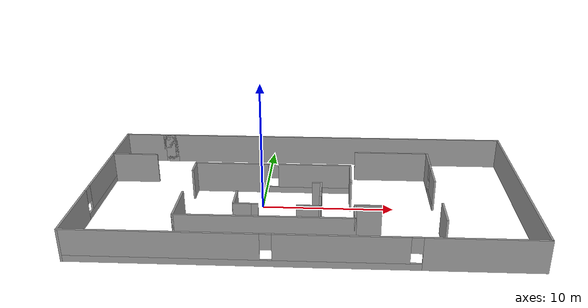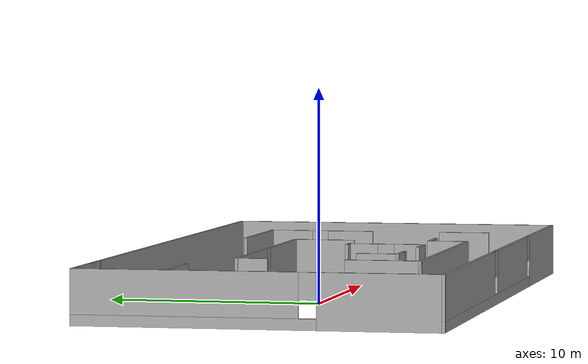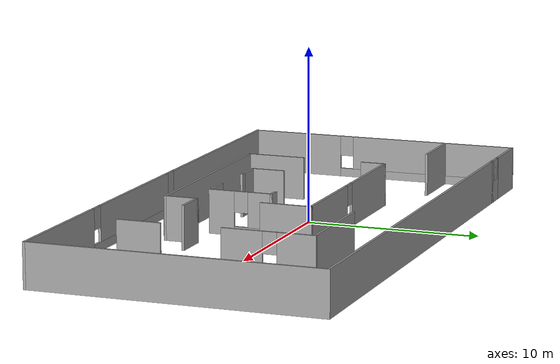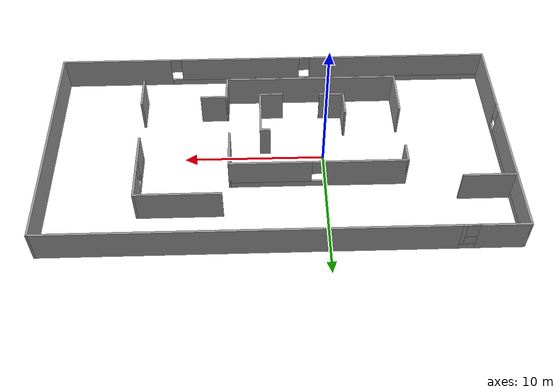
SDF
<?xml version='1.0'?>
<sdf version='1.6'>
  <model name='my_robot_building'>
    <pose frame=''>3.34581 0.063017 0 0 -0 0</pose>
    <link name='Wall_0'>
      <collision name='Wall_0_Collision'>
        <geometry>
          <box>
            <size>2 0.15 2.5</size>
          </box>
        </geometry>
        <pose frame=''>0 0 1.25 0 -0 0</pose>
      </collision>
      <visual name='Wall_0_Visual'>
        <pose frame=''>0 0 1.25 0 -0 0</pose>
        <geometry>
          <box>
            <size>2 0.15 2.5</size>
          </box>
        </geometry>
        <material>
          <script>
            <uri>file://media/materials/scripts/gazebo.material</uri>
            <name>Gazebo/Grey</name>
          </script>
          <ambient>1 1 1 1</ambient>
        </material>
        <meta>
          <layer>0</layer>
        </meta>
      </visual>
      <pose frame=''>-5.01581 -3.17802 0 0 0 -1.5708</pose>
    </link>
    <link name='Wall_1'>
      <collision name='Wall_1_Collision'>
        <geometry>
          <box>
            <size>1.5 0.15 2.5</size>
          </box>
        </geometry>
        <pose frame=''>0 0 1.25 0 -0 0</pose>
      </collision>
      <visual name='Wall_1_Visual'>
        <pose frame=''>0 0 1.25 0 -0 0</pose>
        <geometry>
          <box>
            <size>1.5 0.15 2.5</size>
          </box>
        </geometry>
        <material>
          <script>
            <uri>file://media/materials/scripts/gazebo.material</uri>
            <name>Gazebo/Grey</name>
          </script>
          <ambient>1 1 1 1</ambient>
        </material>
        <meta>
          <layer>0</layer>
        </meta>
      </visual>
      <pose frame=''>-4.34081 -4.10302 0 0 -0 0</pose>
    </link>
    <link name='Wall_10'>
      <collision name='Wall_10_Collision'>
        <geometry>
          <box>
            <size>3 0.15 2.5</size>
          </box>
        </geometry>
        <pose frame=''>0 0 1.25 0 -0 0</pose>
      </collision>
      <visual name='Wall_10_Visual'>
        <pose frame=''>0 0 1.25 0 -0 0</pose>
        <geometry>
          <box>
            <size>3 0.15 2.5</size>
          </box>
        </geometry>
        <material>
          <script>
            <uri>file://media/materials/scripts/gazebo.material</uri>
            <name>Gazebo/Grey</name>
          </script>
          <ambient>1 1 1 1</ambient>
        </material>
        <meta>
          <layer>0</layer>
        </meta>
      </visual>
      <pose frame=''>3.38181 1.10504 0 0 0 -1.5708</pose>
    </link>
    <link name='Wall_12'>
      <collision name='Wall_12_Collision'>
        <geometry>
          <box>
            <size>1.5 0.15 2.5</size>
          </box>
        </geometry>
        <pose frame=''>0 0 1.25 0 -0 0</pose>
      </collision>
      <visual name='Wall_12_Visual'>
        <pose frame=''>0 0 1.25 0 -0 0</pose>
        <geometry>
          <box>
            <size>1.5 0.15 2.5</size>
          </box>
        </geometry>
        <material>
          <script>
            <uri>file://media/materials/scripts/gazebo.material</uri>
            <name>Gazebo/Grey</name>
          </script>
          <ambient>1 1 1 1</ambient>
        </material>
        <meta>
          <layer>0</layer>
        </meta>
      </visual>
      <pose frame=''>-8.96819 1.85504 0 0 0 -1.5708</pose>
    </link>
    <link name='Wall_16'>
      <collision name='Wall_16_Collision'>
        <geometry>
          <box>
            <size>3.5 0.15 2.5</size>
          </box>
        </geometry>
        <pose frame=''>0 0 1.25 0 -0 0</pose>
      </collision>
      <visual name='Wall_16_Visual'>
        <pose frame=''>0 0 1.25 0 -0 0</pose>
        <geometry>
          <box>
            <size>3.5 0.15 2.5</size>
          </box>
        </geometry>
        <material>
          <script>
            <uri>file://media/materials/scripts/gazebo.material</uri>
            <name>Gazebo/Grey</name>
          </script>
          <ambient>1 1 1 1</ambient>
        </material>
        <meta>
          <layer>0</layer>
        </meta>
      </visual>
      <pose frame=''>-8.99132 -4.18743 0 0 0 -1.5708</pose>
    </link>
    <link name='Wall_17'>
      <collision name='Wall_17_Collision'>
        <geometry>
          <box>
            <size>12.75 0.15 2.5</size>
          </box>
        </geometry>
        <pose frame=''>0 0 1.25 0 -0 0</pose>
      </collision>
      <visual name='Wall_17_Visual'>
        <pose frame=''>0 0 1.25 0 -0 0</pose>
        <geometry>
          <box>
            <size>12.75 0.15 2.5</size>
          </box>
        </geometry>
        <material>
          <script>
            <uri>file://media/materials/scripts/gazebo.material</uri>
            <name>Gazebo/Grey</name>
          </script>
          <ambient>1 1 1 1</ambient>
        </material>
        <meta>
          <layer>0</layer>
        </meta>
      </visual>
      <pose frame=''>-2.69132 -5.86243 0 0 -0 0</pose>
    </link>
    <link name='Wall_18'>
      <collision name='Wall_18_Collision'>
        <geometry>
          <box>
            <size>2 0.15 2.5</size>
          </box>
        </geometry>
        <pose frame=''>0 0 1.25 0 -0 0</pose>
      </collision>
      <visual name='Wall_18_Visual'>
        <pose frame=''>0 0 1.25 0 -0 0</pose>
        <geometry>
          <box>
            <size>2 0.15 2.5</size>
          </box>
        </geometry>
        <material>
          <script>
            <uri>file://media/materials/scripts/gazebo.material</uri>
            <name>Gazebo/Grey</name>
          </script>
          <ambient>1 1 1 1</ambient>
        </material>
        <meta>
          <layer>0</layer>
        </meta>
      </visual>
      <pose frame=''>3.60868 -4.93743 0 0 -0 1.5708</pose>
    </link>
    <link name='Wall_19'>
      <collision name='Wall_19_Collision'>
        <geometry>
          <box>
            <size>2 0.15 2.5</size>
          </box>
        </geometry>
        <pose frame=''>0 0 1.25 0 -0 0</pose>
      </collision>
      <visual name='Wall_19_Visual'>
        <pose frame=''>0 0 1.25 0 -0 0</pose>
        <geometry>
          <box>
            <size>2 0.15 2.5</size>
          </box>
        </geometry>
        <material>
          <script>
            <uri>file://media/materials/scripts/gazebo.material</uri>
            <name>Gazebo/Grey</name>
          </script>
          <ambient>1 1 1 1</ambient>
        </material>
        <meta>
          <layer>0</layer>
        </meta>
      </visual>
      <pose frame=''>4.53368 -4.01243 0 0 -0 0</pose>
    </link>
    <link name='Wall_2'>
      <collision name='Wall_2_Collision'>
        <geometry>
          <box>
            <size>0.5 0.15 2.5</size>
          </box>
        </geometry>
        <pose frame=''>0 0 1.25 0 -0 0</pose>
      </collision>
      <visual name='Wall_2_Visual'>
        <pose frame=''>0 0 1.25 0 -0 0</pose>
        <geometry>
          <box>
            <size>0.5 0.15 2.5</size>
          </box>
        </geometry>
        <material>
          <script>
            <uri>file://media/materials/scripts/gazebo.material</uri>
            <name>Gazebo/Grey</name>
          </script>
          <ambient>1 1 1 1</ambient>
        </material>
        <meta>
          <layer>0</layer>
        </meta>
      </visual>
      <pose frame=''>-3.49081 -4.10302 0 0 -0 0</pose>
    </link>
    <link name='Wall_21'>
      <collision name='Wall_21_Collision'>
        <geometry>
          <box>
            <size>6 0.15 2.5</size>
          </box>
        </geometry>
        <pose frame=''>0 0 1.25 0 -0 0</pose>
      </collision>
      <visual name='Wall_21_Visual'>
        <pose frame=''>0 0 1.25 0 -0 0</pose>
        <geometry>
          <box>
            <size>6 0.15 2.5</size>
          </box>
        </geometry>
        <material>
          <script>
            <uri>file://media/materials/scripts/gazebo.material</uri>
            <name>Gazebo/Grey</name>
          </script>
          <ambient>1 1 1 1</ambient>
        </material>
        <meta>
          <layer>0</layer>
        </meta>
      </visual>
      <pose frame=''>6.79429 5.09754 0 0 -0 0</pose>
    </link>
    <link name='Wall_22'>
      <pose frame=''>9.7193 2.54754 0 0 0 -1.5708</pose>
      <visual name='Wall_22_Visual_0'>
        <pose frame=''>-1.54711 0 1.25 0 -0 0</pose>
        <geometry>
          <box>
            <size>2.15579 0.15 2.5</size>
          </box>
        </geometry>
        <material>
          <script>
            <uri>file://media/materials/scripts/gazebo.material</uri>
            <name>Gazebo/Grey</name>
          </script>
          <ambient>1 1 1 1</ambient>
        </material>
        <meta>
          <layer>0</layer>
        </meta>
      </visual>
      <collision name='Wall_22_Collision_0'>
        <geometry>
          <box>
            <size>2.15579 0.15 2.5</size>
          </box>
        </geometry>
        <pose frame=''>-1.54711 0 1.25 0 -0 0</pose>
      </collision>
      <visual name='Wall_22_Visual_1'>
        <pose frame=''>1.07789 0 0.25 0 -0 0</pose>
        <geometry>
          <box>
            <size>3.09421 0.15 0.5</size>
          </box>
        </geometry>
        <material>
          <script>
            <uri>file://media/materials/scripts/gazebo.material</uri>
            <name>Gazebo/Grey</name>
          </script>
          <ambient>1 1 1 1</ambient>
        </material>
        <meta>
          <layer>0</layer>
        </meta>
      </visual>
      <collision name='Wall_22_Collision_1'>
        <geometry>
          <box>
            <size>3.09421 0.15 0.5</size>
          </box>
        </geometry>
        <pose frame=''>1.07789 0 0.25 0 -0 0</pose>
      </collision>
      <visual name='Wall_22_Visual_2'>
        <pose frame=''>1.47789 0 1.5 0 -0 0</pose>
        <geometry>
          <box>
            <size>2.29421 0.15 2</size>
          </box>
        </geometry>
        <material>
          <script>
            <uri>file://media/materials/scripts/gazebo.material</uri>
            <name>Gazebo/Grey</name>
          </script>
          <ambient>1 1 1 1</ambient>
        </material>
        <meta>
          <layer>0</layer>
        </meta>
      </visual>
      <collision name='Wall_22_Collision_2'>
        <geometry>
          <box>
            <size>2.29421 0.15 2</size>
          </box>
        </geometry>
        <pose frame=''>1.47789 0 1.5 0 -0 0</pose>
      </collision>
      <visual name='Wall_22_Visual_3'>
        <pose frame=''>-0.069214 0 1.9 0 -0 0</pose>
        <geometry>
          <box>
            <size>0.8 0.15 1.2</size>
          </box>
        </geometry>
        <material>
          <script>
            <uri>file://media/materials/scripts/gazebo.material</uri>
            <name>Gazebo/Grey</name>
          </script>
          <ambient>1 1 1 1</ambient>
        </material>
        <meta>
          <layer>0</layer>
        </meta>
      </visual>
      <collision name='Wall_22_Collision_3'>
        <geometry>
          <box>
            <size>0.8 0.15 1.2</size>
          </box>
        </geometry>
        <pose frame=''>-0.069214 0 1.9 0 -0 0</pose>
      </collision>
    </link>
    <link name='Wall_24'>
      <collision name='Wall_24_Collision'>
        <geometry>
          <box>
            <size>2.5 0.15 2.5</size>
          </box>
        </geometry>
        <pose frame=''>0 0 1.25 0 -0 0</pose>
      </collision>
      <visual name='Wall_24_Visual'>
        <pose frame=''>0 0 1.25 0 -0 0</pose>
        <geometry>
          <box>
            <size>2.5 0.15 2.5</size>
          </box>
        </geometry>
        <material>
          <script>
            <uri>file://media/materials/scripts/gazebo.material</uri>
            <name>Gazebo/Grey</name>
          </script>
          <ambient>1 1 1 1</ambient>
        </material>
        <meta>
          <layer>0</layer>
        </meta>
      </visual>
      <pose frame=''>9.83566 -4.68633 0 0 -0 1.5708</pose>
    </link>
    <link name='Wall_26'>
      <collision name='Wall_26_Collision'>
        <geometry>
          <box>
            <size>29.25 0.15 2.5</size>
          </box>
        </geometry>
        <pose frame=''>0 0 1.25 0 -0 0</pose>
      </collision>
      <visual name='Wall_26_Visual'>
        <pose frame=''>0 0 1.25 0 -0 0</pose>
        <geometry>
          <box>
            <size>29.25 0.15 2.5</size>
          </box>
        </geometry>
        <material>
          <script>
            <uri>file://media/materials/scripts/gazebo.material</uri>
            <name>Gazebo/Grey</name>
          </script>
          <ambient>1 1 1 1</ambient>
        </material>
        <meta>
          <layer>0</layer>
        </meta>
      </visual>
      <pose frame=''>1.625 8.175 0 0 -0 0</pose>
    </link>
    <link name='Wall_27'>
      <collision name='Wall_27_Collision'>
        <geometry>
          <box>
            <size>16.5 0.15 2.5</size>
          </box>
        </geometry>
        <pose frame=''>0 0 1.25 0 -0 0</pose>
      </collision>
      <visual name='Wall_27_Visual'>
        <pose frame=''>0 0 1.25 0 -0 0</pose>
        <geometry>
          <box>
            <size>16.5 0.15 2.5</size>
          </box>
        </geometry>
        <material>
          <script>
            <uri>file://media/materials/scripts/gazebo.material</uri>
            <name>Gazebo/Grey</name>
          </script>
          <ambient>1 1 1 1</ambient>
        </material>
        <meta>
          <layer>0</layer>
        </meta>
      </visual>
      <pose frame=''>16.175 0 0 0 0 -1.5708</pose>
    </link>
    <link name='Wall_28'>
      <pose frame=''>0 -8.175 0 0 -0 3.14159</pose>
      <visual name='Wall_28_Visual_0'>
        <pose frame=''>-12.1171 0 1.25 0 -0 0</pose>
        <geometry>
          <box>
            <size>8.26578 0.15 2.5</size>
          </box>
        </geometry>
        <material>
          <script>
            <uri>file://media/materials/scripts/gazebo.material</uri>
            <name>Gazebo/Grey</name>
          </script>
          <ambient>1 1 1 1</ambient>
        </material>
        <meta>
          <layer>0</layer>
        </meta>
      </visual>
      <collision name='Wall_28_Collision_0'>
        <geometry>
          <box>
            <size>8.26578 0.15 2.5</size>
          </box>
        </geometry>
        <pose frame=''>-12.1171 0 1.25 0 -0 0</pose>
      </collision>
      <visual name='Wall_28_Visual_1'>
        <pose frame=''>4.13289 0 0.25 0 -0 0</pose>
        <geometry>
          <box>
            <size>24.2342 0.15 0.5</size>
          </box>
        </geometry>
        <material>
          <script>
            <uri>file://media/materials/scripts/gazebo.material</uri>
            <name>Gazebo/Grey</name>
          </script>
          <ambient>1 1 1 1</ambient>
        </material>
        <meta>
          <layer>0</layer>
        </meta>
      </visual>
      <collision name='Wall_28_Collision_1'>
        <geometry>
          <box>
            <size>24.2342 0.15 0.5</size>
          </box>
        </geometry>
        <pose frame=''>4.13289 0 0.25 0 -0 0</pose>
      </collision>
      <visual name='Wall_28_Visual_2'>
        <pose frame=''>-2.62401 0 1.5 0 -0 0</pose>
        <geometry>
          <box>
            <size>9.12041 0.15 2</size>
          </box>
        </geometry>
        <material>
          <script>
            <uri>file://media/materials/scripts/gazebo.material</uri>
            <name>Gazebo/Grey</name>
          </script>
          <ambient>1 1 1 1</ambient>
        </material>
        <meta>
          <layer>0</layer>
        </meta>
      </visual>
      <collision name='Wall_28_Collision_2'>
        <geometry>
          <box>
            <size>9.12041 0.15 2</size>
          </box>
        </geometry>
        <pose frame=''>-2.62401 0 1.5 0 -0 0</pose>
      </collision>
      <visual name='Wall_28_Visual_3'>
        <pose frame=''>9.4931 0 1.5 0 -0 0</pose>
        <geometry>
          <box>
            <size>13.5138 0.15 2</size>
          </box>
        </geometry>
        <material>
          <script>
            <uri>file://media/materials/scripts/gazebo.material</uri>
            <name>Gazebo/Grey</name>
          </script>
          <ambient>1 1 1 1</ambient>
        </material>
        <meta>
          <layer>0</layer>
        </meta>
      </visual>
      <collision name='Wall_28_Collision_3'>
        <geometry>
          <box>
            <size>13.5138 0.15 2</size>
          </box>
        </geometry>
        <pose frame=''>9.4931 0 1.5 0 -0 0</pose>
      </collision>
      <visual name='Wall_28_Visual_4'>
        <pose frame=''>-7.58422 0 1.9 0 -0 0</pose>
        <geometry>
          <box>
            <size>0.8 0.15 1.2</size>
          </box>
        </geometry>
        <material>
          <script>
            <uri>file://media/materials/scripts/gazebo.material</uri>
            <name>Gazebo/Grey</name>
          </script>
          <ambient>1 1 1 1</ambient>
        </material>
        <meta>
          <layer>0</layer>
        </meta>
      </visual>
      <collision name='Wall_28_Collision_4'>
        <geometry>
          <box>
            <size>0.8 0.15 1.2</size>
          </box>
        </geometry>
        <pose frame=''>-7.58422 0 1.9 0 -0 0</pose>
      </collision>
      <visual name='Wall_28_Visual_5'>
        <pose frame=''>2.33619 0 1.9 0 -0 0</pose>
        <geometry>
          <box>
            <size>0.8 0.15 1.2</size>
          </box>
        </geometry>
        <material>
          <script>
            <uri>file://media/materials/scripts/gazebo.material</uri>
            <name>Gazebo/Grey</name>
          </script>
          <ambient>1 1 1 1</ambient>
        </material>
        <meta>
          <layer>0</layer>
        </meta>
      </visual>
      <collision name='Wall_28_Collision_5'>
        <geometry>
          <box>
            <size>0.8 0.15 1.2</size>
          </box>
        </geometry>
        <pose frame=''>2.33619 0 1.9 0 -0 0</pose>
      </collision>
    </link>
    <link name='Wall_29'>
      <pose frame=''>-16.175 0 0 0 -0 1.5708</pose>
      <visual name='Wall_29_Visual_0'>
        <pose frame=''>-5.46155 0 1.25 0 -0 0</pose>
        <geometry>
          <box>
            <size>5.57691 0.15 2.5</size>
          </box>
        </geometry>
        <material>
          <script>
            <uri>file://media/materials/scripts/gazebo.material</uri>
            <name>Gazebo/Grey</name>
          </script>
          <ambient>1 1 1 1</ambient>
        </material>
        <meta>
          <layer>0</layer>
        </meta>
      </visual>
      <collision name='Wall_29_Collision_0'>
        <geometry>
          <box>
            <size>5.57691 0.15 2.5</size>
          </box>
        </geometry>
        <pose frame=''>-5.46155 0 1.25 0 -0 0</pose>
      </collision>
      <visual name='Wall_29_Visual_1'>
        <pose frame=''>2.78845 0 0.25 0 -0 0</pose>
        <geometry>
          <box>
            <size>10.9231 0.15 0.5</size>
          </box>
        </geometry>
        <material>
          <script>
            <uri>file://media/materials/scripts/gazebo.material</uri>
            <name>Gazebo/Grey</name>
          </script>
          <ambient>1 1 1 1</ambient>
        </material>
        <meta>
          <layer>0</layer>
        </meta>
      </visual>
      <collision name='Wall_29_Collision_1'>
        <geometry>
          <box>
            <size>10.9231 0.15 0.5</size>
          </box>
        </geometry>
        <pose frame=''>2.78845 0 0.25 0 -0 0</pose>
      </collision>
      <visual name='Wall_29_Visual_2'>
        <pose frame=''>3.18845 0 1.5 0 -0 0</pose>
        <geometry>
          <box>
            <size>10.1231 0.15 2</size>
          </box>
        </geometry>
        <material>
          <script>
            <uri>file://media/materials/scripts/gazebo.material</uri>
            <name>Gazebo/Grey</name>
          </script>
          <ambient>1 1 1 1</ambient>
        </material>
        <meta>
          <layer>0</layer>
        </meta>
      </visual>
      <collision name='Wall_29_Collision_2'>
        <geometry>
          <box>
            <size>10.1231 0.15 2</size>
          </box>
        </geometry>
        <pose frame=''>3.18845 0 1.5 0 -0 0</pose>
      </collision>
      <visual name='Wall_29_Visual_3'>
        <pose frame=''>-2.27309 0 1.9 0 -0 0</pose>
        <geometry>
          <box>
            <size>0.8 0.15 1.2</size>
          </box>
        </geometry>
        <material>
          <script>
            <uri>file://media/materials/scripts/gazebo.material</uri>
            <name>Gazebo/Grey</name>
          </script>
          <ambient>1 1 1 1</ambient>
        </material>
        <meta>
          <layer>0</layer>
        </meta>
      </visual>
      <collision name='Wall_29_Collision_3'>
        <geometry>
          <box>
            <size>0.8 0.15 1.2</size>
          </box>
        </geometry>
        <pose frame=''>-2.27309 0 1.9 0 -0 0</pose>
      </collision>
    </link>
    <link name='Wall_30'>
      <pose frame=''>-14 8.175 0 0 -0 0</pose>
      <visual name='Wall_30_Visual_0'>
        <pose frame=''>-0.541249 0 1.25 0 -0 0</pose>
        <geometry>
          <box>
            <size>3.4175 0.15 2.5</size>
          </box>
        </geometry>
        <material>
          <script>
            <uri>file://media/materials/scripts/gazebo.material</uri>
            <name>Gazebo/Grey</name>
          </script>
          <ambient>1 1 1 1</ambient>
        </material>
        <meta>
          <layer>0</layer>
        </meta>
      </visual>
      <collision name='Wall_30_Collision_0'>
        <geometry>
          <box>
            <size>3.4175 0.15 2.5</size>
          </box>
        </geometry>
        <pose frame=''>-0.541249 0 1.25 0 -0 0</pose>
      </collision>
      <visual name='Wall_30_Visual_1'>
        <pose frame=''>1.70875 0 0.25 0 -0 0</pose>
        <geometry>
          <box>
            <size>1.0825 0.15 0.5</size>
          </box>
        </geometry>
        <material>
          <script>
            <uri>file://media/materials/scripts/gazebo.material</uri>
            <name>Gazebo/Grey</name>
          </script>
          <ambient>1 1 1 1</ambient>
        </material>
        <meta>
          <layer>0</layer>
        </meta>
      </visual>
      <collision name='Wall_30_Collision_1'>
        <geometry>
          <box>
            <size>1.0825 0.15 0.5</size>
          </box>
        </geometry>
        <pose frame=''>1.70875 0 0.25 0 -0 0</pose>
      </collision>
      <visual name='Wall_30_Visual_2'>
        <pose frame=''>2.10875 0 1.5 0 -0 0</pose>
        <geometry>
          <box>
            <size>0.282497 0.15 2</size>
          </box>
        </geometry>
        <material>
          <script>
            <uri>file://media/materials/scripts/gazebo.material</uri>
            <name>Gazebo/Grey</name>
          </script>
          <ambient>1 1 1 1</ambient>
        </material>
        <meta>
          <layer>0</layer>
        </meta>
      </visual>
      <collision name='Wall_30_Collision_2'>
        <geometry>
          <box>
            <size>0.282497 0.15 2</size>
          </box>
        </geometry>
        <pose frame=''>2.10875 0 1.5 0 -0 0</pose>
      </collision>
      <visual name='Wall_30_Visual_3'>
        <pose frame=''>1.5675 0 1.9 0 -0 0</pose>
        <geometry>
          <box>
            <size>0.8 0.15 1.2</size>
          </box>
        </geometry>
        <material>
          <script>
            <uri>file://media/materials/scripts/gazebo.material</uri>
            <name>Gazebo/Grey</name>
          </script>
          <ambient>1 1 1 1</ambient>
        </material>
        <meta>
          <layer>0</layer>
        </meta>
      </visual>
      <collision name='Wall_30_Collision_3'>
        <geometry>
          <box>
            <size>0.8 0.15 1.2</size>
          </box>
        </geometry>
        <pose frame=''>1.5675 0 1.9 0 -0 0</pose>
      </collision>
    </link>
    <link name='Wall_32'>
      <collision name='Wall_32_Collision'>
        <geometry>
          <box>
            <size>3.75 0.15 2.5</size>
          </box>
        </geometry>
        <pose frame=''>0 0 1.25 0 -0 0</pose>
      </collision>
      <visual name='Wall_32_Visual'>
        <pose frame=''>0 0 1.25 0 -0 0</pose>
        <geometry>
          <box>
            <size>3.75 0.15 2.5</size>
          </box>
        </geometry>
        <material>
          <script>
            <uri>file://media/materials/scripts/gazebo.material</uri>
            <name>Gazebo/Grey</name>
          </script>
          <ambient>1 1 1 1</ambient>
        </material>
        <meta>
          <layer>0</layer>
        </meta>
      </visual>
      <pose frame=''>-14.3614 3.98873 0 0 -0 0</pose>
    </link>
    <link name='Wall_5'>
      <collision name='Wall_5_Collision'>
        <geometry>
          <box>
            <size>1.75 0.15 2.5</size>
          </box>
        </geometry>
        <pose frame=''>0 0 1.25 0 -0 0</pose>
      </collision>
      <visual name='Wall_5_Visual'>
        <pose frame=''>0 0 1.25 0 -0 0</pose>
        <geometry>
          <box>
            <size>1.75 0.15 2.5</size>
          </box>
        </geometry>
        <material>
          <script>
            <uri>file://media/materials/scripts/gazebo.material</uri>
            <name>Gazebo/Grey</name>
          </script>
          <ambient>1 1 1 1</ambient>
        </material>
        <meta>
          <layer>0</layer>
        </meta>
      </visual>
      <pose frame=''>0.334186 -4.20302 0 0 -0 0</pose>
    </link>
    <link name='Wall_6'>
      <pose frame=''>1.13419 -2.40302 0 0 -0 1.5708</pose>
      <visual name='Wall_6_Visual_0'>
        <pose frame=''>-1.12531 0 1.25 0 -0 0</pose>
        <geometry>
          <box>
            <size>1.49939 0.15 2.5</size>
          </box>
        </geometry>
        <material>
          <script>
            <uri>file://media/materials/scripts/gazebo.material</uri>
            <name>Gazebo/Grey</name>
          </script>
          <ambient>1 1 1 1</ambient>
        </material>
        <meta>
          <layer>0</layer>
        </meta>
      </visual>
      <collision name='Wall_6_Collision_0'>
        <geometry>
          <box>
            <size>1.49939 0.15 2.5</size>
          </box>
        </geometry>
        <pose frame=''>-1.12531 0 1.25 0 -0 0</pose>
      </collision>
      <visual name='Wall_6_Visual_1'>
        <pose frame=''>0.749694 0 0.25 0 -0 0</pose>
        <geometry>
          <box>
            <size>2.25061 0.15 0.5</size>
          </box>
        </geometry>
        <material>
          <script>
            <uri>file://media/materials/scripts/gazebo.material</uri>
            <name>Gazebo/Grey</name>
          </script>
          <ambient>1 1 1 1</ambient>
        </material>
        <meta>
          <layer>0</layer>
        </meta>
      </visual>
      <collision name='Wall_6_Collision_1'>
        <geometry>
          <box>
            <size>2.25061 0.15 0.5</size>
          </box>
        </geometry>
        <pose frame=''>0.749694 0 0.25 0 -0 0</pose>
      </collision>
      <visual name='Wall_6_Visual_2'>
        <pose frame=''>1.14969 0 1.5 0 -0 0</pose>
        <geometry>
          <box>
            <size>1.45061 0.15 2</size>
          </box>
        </geometry>
        <material>
          <script>
            <uri>file://media/materials/scripts/gazebo.material</uri>
            <name>Gazebo/Grey</name>
          </script>
          <ambient>1 1 1 1</ambient>
        </material>
        <meta>
          <layer>0</layer>
        </meta>
      </visual>
      <collision name='Wall_6_Collision_2'>
        <geometry>
          <box>
            <size>1.45061 0.15 2</size>
          </box>
        </geometry>
        <pose frame=''>1.14969 0 1.5 0 -0 0</pose>
      </collision>
      <visual name='Wall_6_Visual_3'>
        <pose frame=''>0.024388 0 1.9 0 -0 0</pose>
        <geometry>
          <box>
            <size>0.8 0.15 1.2</size>
          </box>
        </geometry>
        <material>
          <script>
            <uri>file://media/materials/scripts/gazebo.material</uri>
            <name>Gazebo/Grey</name>
          </script>
          <ambient>1 1 1 1</ambient>
        </material>
        <meta>
          <layer>0</layer>
        </meta>
      </visual>
      <collision name='Wall_6_Collision_3'>
        <geometry>
          <box>
            <size>0.8 0.15 1.2</size>
          </box>
        </geometry>
        <pose frame=''>0.024388 0 1.9 0 -0 0</pose>
      </collision>
    </link>
    <link name='Wall_7'>
      <collision name='Wall_7_Collision'>
        <geometry>
          <box>
            <size>0.75 0.15 2.5</size>
          </box>
        </geometry>
        <pose frame=''>0 0 1.25 0 -0 0</pose>
      </collision>
      <visual name='Wall_7_Visual'>
        <pose frame=''>0 0 1.25 0 -0 0</pose>
        <geometry>
          <box>
            <size>0.75 0.15 2.5</size>
          </box>
        </geometry>
        <material>
          <script>
            <uri>file://media/materials/scripts/gazebo.material</uri>
            <name>Gazebo/Grey</name>
          </script>
          <ambient>1 1 1 1</ambient>
        </material>
        <meta>
          <layer>0</layer>
        </meta>
      </visual>
      <pose frame=''>0.834186 -0.603017 0 0 -0 3.14159</pose>
    </link>
    <link name='Wall_9'>
      <pose frame=''>-2.79319 2.53004 0 0 -0 0</pose>
      <visual name='Wall_9_Visual_0'>
        <pose frame=''>-3.30757 0 1.25 0 -0 0</pose>
        <geometry>
          <box>
            <size>5.88485 0.15 2.5</size>
          </box>
        </geometry>
        <material>
          <script>
            <uri>file://media/materials/scripts/gazebo.material</uri>
            <name>Gazebo/Grey</name>
          </script>
          <ambient>1 1 1 1</ambient>
        </material>
        <meta>
          <layer>0</layer>
        </meta>
      </visual>
      <collision name='Wall_9_Collision_0'>
        <geometry>
          <box>
            <size>5.88485 0.15 2.5</size>
          </box>
        </geometry>
        <pose frame=''>-3.30757 0 1.25 0 -0 0</pose>
      </collision>
      <visual name='Wall_9_Visual_1'>
        <pose frame=''>2.94243 0 0.25 0 -0 0</pose>
        <geometry>
          <box>
            <size>6.61515 0.15 0.5</size>
          </box>
        </geometry>
        <material>
          <script>
            <uri>file://media/materials/scripts/gazebo.material</uri>
            <name>Gazebo/Grey</name>
          </script>
          <ambient>1 1 1 1</ambient>
        </material>
        <meta>
          <layer>0</layer>
        </meta>
      </visual>
      <collision name='Wall_9_Collision_1'>
        <geometry>
          <box>
            <size>6.61515 0.15 0.5</size>
          </box>
        </geometry>
        <pose frame=''>2.94243 0 0.25 0 -0 0</pose>
      </collision>
      <visual name='Wall_9_Visual_2'>
        <pose frame=''>3.34243 0 1.5 0 -0 0</pose>
        <geometry>
          <box>
            <size>5.81515 0.15 2</size>
          </box>
        </geometry>
        <material>
          <script>
            <uri>file://media/materials/scripts/gazebo.material</uri>
            <name>Gazebo/Grey</name>
          </script>
          <ambient>1 1 1 1</ambient>
        </material>
        <meta>
          <layer>0</layer>
        </meta>
      </visual>
      <collision name='Wall_9_Collision_2'>
        <geometry>
          <box>
            <size>5.81515 0.15 2</size>
          </box>
        </geometry>
        <pose frame=''>3.34243 0 1.5 0 -0 0</pose>
      </collision>
      <visual name='Wall_9_Visual_3'>
        <pose frame=''>0.034855 0 1.9 0 -0 0</pose>
        <geometry>
          <box>
            <size>0.8 0.15 1.2</size>
          </box>
        </geometry>
        <material>
          <script>
            <uri>file://media/materials/scripts/gazebo.material</uri>
            <name>Gazebo/Grey</name>
          </script>
          <ambient>1 1 1 1</ambient>
        </material>
        <meta>
          <layer>0</layer>
        </meta>
      </visual>
      <collision name='Wall_9_Collision_3'>
        <geometry>
          <box>
            <size>0.8 0.15 1.2</size>
          </box>
        </geometry>
        <pose frame=''>0.034855 0 1.9 0 -0 0</pose>
      </collision>
    </link>
    <static>1</static>
  </model>
</sdf>
